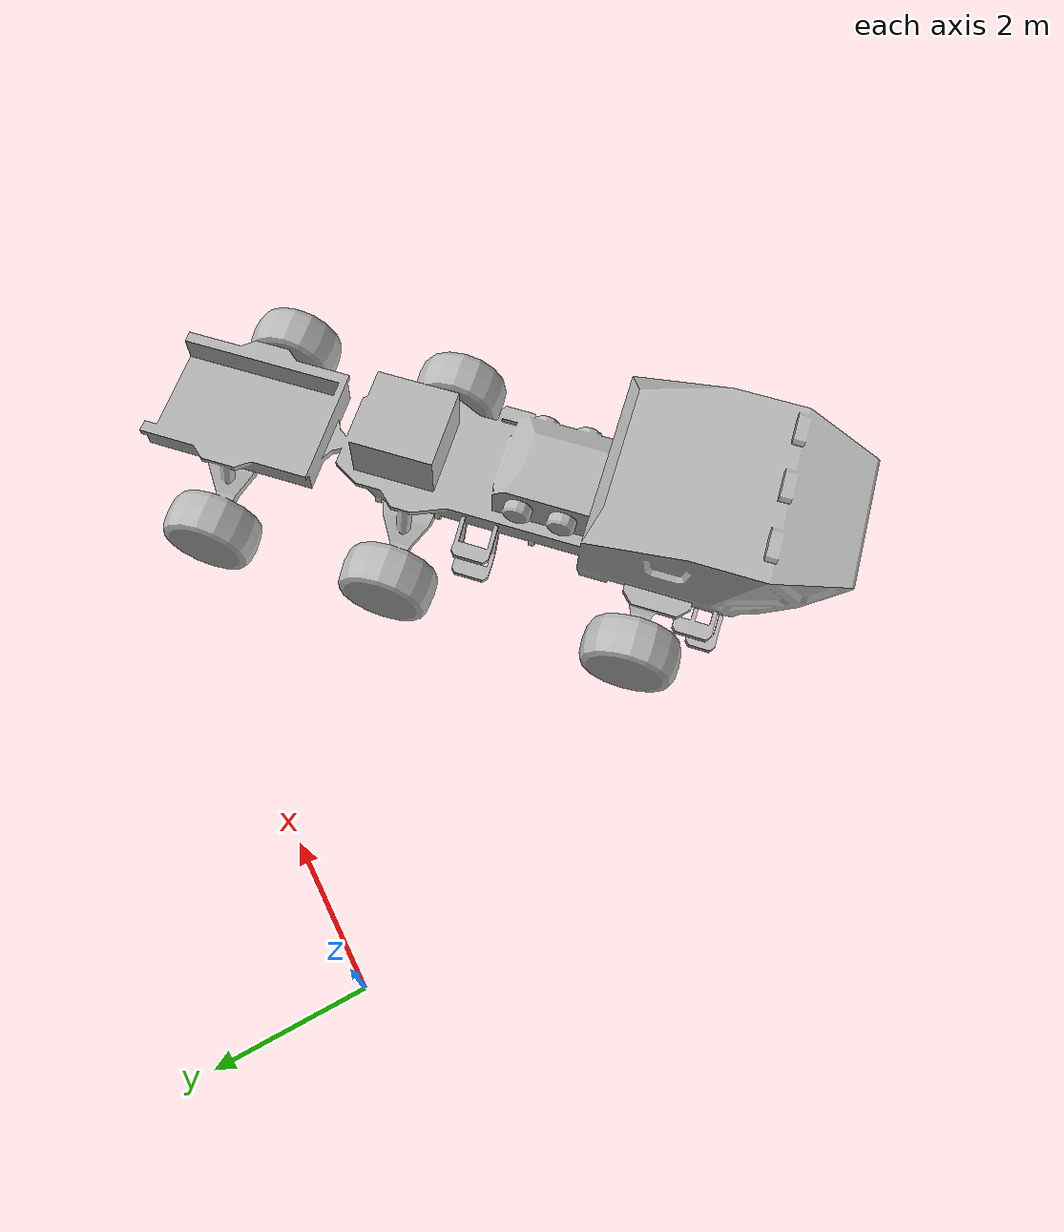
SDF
<sdf version="1.6">
 <world name="SRC_finals">
  <include>
   <pose>4.434506480465865
        -4.8680360294871345
        0
        0
        0
        -0.7853981633974487</pose>
   <uri>model://mars_explorer</uri>
  </include>
 </world>
</sdf>
